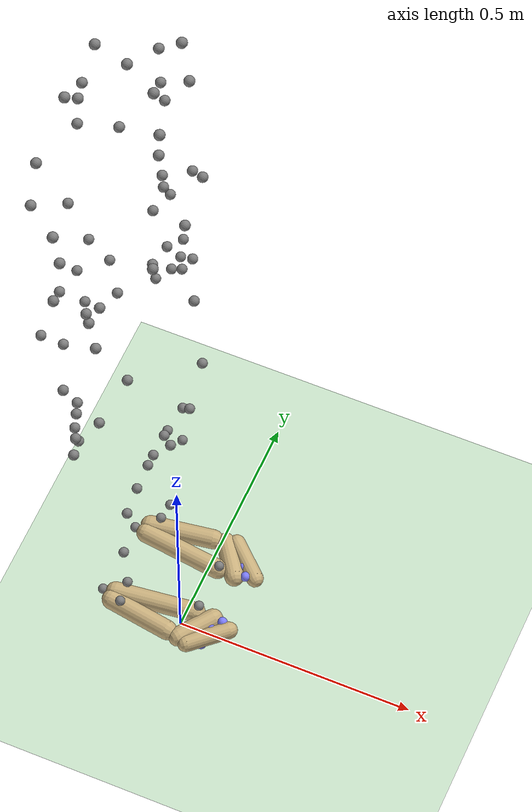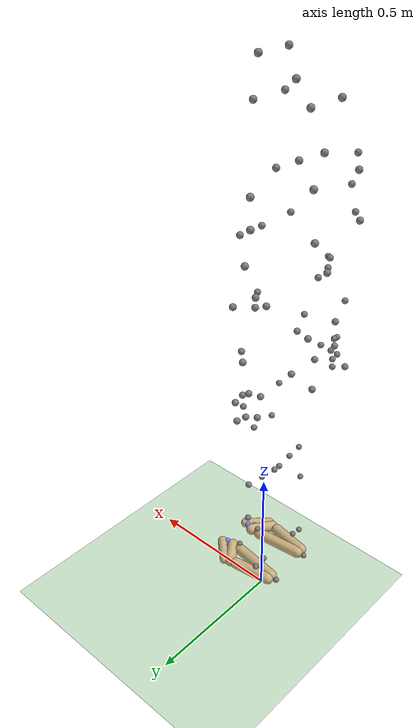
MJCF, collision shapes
<mujoco model="FullBodyModel_MuscleActuatedLowerLimb_TorqueActuatedUpperBody">
  <compiler angle="radian" boundmass="0.001" boundinertia="0.001"/>
  <option timestep="0.00416667" iterations="1" ls_iterations="4">
    <flag eulerdamp="disable" warmstart="disable"/>
  </option>
  <visual>
    <global offwidth="800"/>
  </visual>
  <visual>
    <global offheight="800"/>
  </visual>
  <size njmax="1000" nconmax="400" nuser_jnt="1"/>
  <default class="main">
    <joint stiffness="1" limited="true" armature="0.01" damping="1"/>
    <geom contype="0" conaffinity="0" margin="0.001" rgba="0.8 0.6 0.4 1"/>
    <site size="0.001 0.005 0.005"/>
    <tendon limited="false" width="0.001" rgba="0.95 0.3 0.3 1"/>
	<general ctrllimited="true" ctrlrange="-1 1"/>
	<default class="coll">
      <geom type="capsule" contype="1" group="1" rgba="0.8 0.7 0.5 1" margin="0.001"/>
    </default>
  </default>
  <worldbody>
    <geom name="floor" size="500 500 0.125" type="plane" contype="1" conaffinity="1" group="2" material="MatPlane" rgba="0.8 0.9 0.8 1"/>
	<light pos="0 0 1.3" dir="0 0 -1" directional="true" castshadow="false" cutoff="100" exponent="1" diffuse="1 1 1" specular="0.1 0.1 0.1"/>
    <body name="pelvis" pos="0 6.73556e-17 1.1" quat="0.7071067811865475 0.7071067811865475 0.0 0.0">
      <geom name="r_pelvis" type="mesh" mesh="r_pelvis"></geom>
      <geom name="l_pelvis" type="mesh" mesh="l_pelvis"></geom>
      <geom name="sacrum" type="mesh" mesh="sacrum"></geom>
      <inertial pos="-0.0707 0 0" mass="11.777" fullinertia="0.1028 0.0871 0.0579 0 0 0"></inertial>
      <joint name="pelvis_tx" type="slide" pos="0 0 0" axis="1 0 0" limited="false" range="-500 500" ref="0" armature="0" damping="0" stiffness="0"></joint>
      <joint name="pelvis_ty" type="slide" pos="0 0 0" axis="0 1 0" limited="false" range="-300 300" ref="0" armature="0" damping="0" stiffness="0"></joint>
      <joint name="pelvis_tz" type="slide" pos="0 0 0" axis="0 0 1" limited="false" range="-100 200" ref="0" armature="0" damping="0" stiffness="0"></joint>
      <joint name="pelvis_tilt" type="hinge" pos="0 0 0" axis="0 0 1" limited="true" range=" -1.5708 1.5708" ref="0" armature="0" damping="0" stiffness="0"></joint>
      <joint name="pelvis_list" type="hinge" pos="0 0 0" axis="1 0 0" limited="true" range="-1.5708 1.5708" ref="0" armature="0" damping="0" stiffness="0"></joint>
      <joint name="pelvis_rotation" type="hinge" pos="0 0 0" axis="0 1 0" limited="true" range=" -1.5708   1.5708" ref="0" armature="0" damping="0" stiffness="0"></joint>
	  <site name="rasis" pos="-0.0219389 -0.00227135 0.143841" size="0.01"/>
      <site name="lasis" pos="-0.0219389 -0.00227135 -0.143841" size="0.01"/>
      <site name="rpsis" pos="-0.190785 0.0705299 0.0625177" size="0.01"/>
      <site name="lpsis" pos="-0.190785 0.0705299 -0.0625177" size="0.01"/>
      <site name="CHip" pos="-0.105673 0.0334961 0.000910482" size="0.01"/>
      <site name="RHip" pos="-0.169805 -0.0346575 0.10081" size="0.01"/>
      <site name="LHip" pos="-0.169805 -0.0346575 -0.10081" size="0.01"/>
      <site name="mhip" pos="-0.172699 -0.0336121 0.00126933" size="0.01"/>
      <site name="rbum" pos="-0.22695 -0.0711889 0.0781376" size="0.01"/>
      <site name="lbum" pos="-0.22695 -0.0711889 -0.0781376" size="0.01"/>
	  <camera name="track" pos="0 0 4" mode="trackcom"/>
	  <light name="spotlight" pos="0 10 2" dir="0 -1 0" mode="trackcom"/>
      <body name="femur_r" pos="-0.056276 -0.07849  0.07726" quat="1.0 0.0 0.0 0.0">
        <geom name="r_femur" type="mesh" mesh="r_femur"></geom>
        <inertial pos="0 -0.17 0" mass="9.3014" fullinertia="0.1339 0.0351 0.1412 0 0 0"></inertial>
        <joint name="hip_flexion_r" type="hinge" pos="0 0 0" axis="0 0 1" limited="true" range="-0.787 2.0944" ref="0"></joint>
        <joint name="hip_adduction_r" type="hinge" pos="0 0 0" axis="1 0 0" limited="true" range="-0.524 0.524" ref="0"></joint>
        <joint name="hip_rotation_r" type="hinge" pos="0 0 0" axis="0 1 0" limited="true" range="-0.698132 0.698132" ref="0"></joint>
		<site name="rthigh" pos="-0.00674545 -0.0342306 0.106869" size="0.01"/>
        <site name="rfrontthigh" pos="0.076145 -0.166172 0.0094889" size="0.01"/>
        <site name="rfrontinnerthigh" pos="0.0678635 -0.267824 -0.0331186" size="0.01"/>
        <body name="tibia_r" pos="-4.6e-07 -0.404425 -0.00126526" quat="1.0 7.240636975890137e-18 -9.456205735995121e-17 -2.960068750797159e-20">
          <geom name="r_tibia" type="mesh" mesh="r_tibia"></geom>
          <geom name="r_fibula" type="mesh" mesh="r_fibula"></geom>
          <inertial pos="0 -0.1867 0" mass="3.7075" fullinertia="0.0504 0.0051 0.0511 0 0 0"></inertial>
          <joint name="knee_angle_r_translation2" type="slide" pos="0 0 0" axis="0.992246 0.123982 -0.00878916" limited="true" range="7.69254e-11 0.006792" ref="0"></joint>
          <joint name="knee_angle_r_translation1" type="slide" pos="0 0 0" axis="-0.124293 0.989762 -0.0701648" limited="true" range="9.53733e-08 0.00159883" ref="0"></joint>
          <joint name="knee_angle_r" type="hinge" pos="0 0 0" axis="-3.98373e-10 -0.0707131 -0.997497" limited="true" range="-0.2 2.0944" ref="0"></joint>
          <joint name="knee_angle_r_rotation2" type="hinge" pos="0 0 0" axis="0.992246 0.123982 -0.00878916" limited="true" range="-0.00167821 0.0335354" ref="0"></joint>
          <joint name="knee_angle_r_rotation3" type="hinge" pos="0 0 0" axis="-0.124293 0.989762 -0.0701648" limited="true" range="1.08939e-08 0.262788" ref="0"></joint>
          <site name="RKnee" pos="0.00728611 -0.0175738 -0.00496484" size="0.01"/>
          <site name="rknem" pos="0.013188 -0.0170056 0.0531986" size="0.01"/>
          <site name="rinnerknee" pos="0.00344908 -0.0227503 -0.0633382" size="0.01"/>
          <site name="rshin" pos="0.00642417 -0.151537 0.062612" size="0.01"/>
		  <body name="talus_r" pos="-0.01 -0.4 0" quat="1.0 -6.036754011562992e-18 1.5193252867388614e-18 -2.498419531737724e-19">
            <geom name="r_talus" type="mesh" mesh="r_talus"></geom>
            <inertial pos="0 0 0" mass="0.1" fullinertia="0.001 0.001 0.001 0 0 0"></inertial>
            <joint name="ankle_angle_r" type="hinge" pos="0 0 0" axis="-0.105014 -0.174022 0.979126" limited="true" range="-0.698132 0.523599" ref="0"></joint>
			<site name="rankm" pos="-0.00609146 0.0174918 0.0446369" size="0.01"/>
            <site name="RAnkle" pos="-0.00819541 0.0267856 0.00464904" size="0.01"/>
            <body name="calcn_r" pos="-0.04877 -0.04195  0.00792" quat="1.0 -5.320429553087796e-19 1.609289071159989e-17 -2.1848634538867752e-17">
              <geom name="r_foot" type="mesh" mesh="r_foot"></geom>
			  <geom name="r_foot_col1" class="coll" size="0.02 0.0831039" pos="0.0925 0 -0.02" quat="0.6632 0 0.748442 0"/>
              <geom name="r_foot_col3" class="coll" size="0.02 0.0657647" pos="0.075 0 0.02" quat="0.758965 0 0.651131 0"/>
              <inertial pos="0.1 0.03 0" mass="1.25" fullinertia="0.0014 0.0039 0.0041 0 0 0"></inertial>
              <joint name="subtalar_angle_r" type="hinge" pos="0 0 0" axis="0.78718 0.604747 -0.120949" limited="true" range="-0.349066 0.349066" ref="0"></joint>
			  <site name="RHeel" pos="-0.0161672 -0.00123484 -0.00612689" size="0.01"/>
              <site name="rfifthmetatarsal" pos="0.163141 -0.00757232 0.034868" size="0.01"/>
              <site name="rfirstmetatarsal" pos="0.180635 0.0222052 -0.0342573" size="0.01"/>
              <site name="RFoot" pos="0.220955 0.00145429 -0.00538186" size="0.01" rgba="0.5 0.5 1 1"/>
              <body name="toes_r" pos="0.1788 -0.002 0.00108" quat="1.0 1.314867274624753e-31 -2.6810890689525335e-17 -3.939849802505862e-32">
                <geom name="r_bofoot" type="mesh" mesh="r_bofoot"></geom>
				<geom name="r_bofoot_col1" class="coll" size="0.0175 0.045" pos="0.04 0 0.01" quat="0.400864 0 0.916138 0"/>
                <geom name="r_bofoot_col2" class="coll" size="0.02 0.04" pos="0.01 0 0" quat="0.305011 0 0.952349 0"/>
                <inertial pos="0.0346 0.006 -0.0175" mass="0.2166" fullinertia="0.0001 0.0002 0.001 0 0 0"></inertial>
                <joint name="mtp_angle_r" type="hinge" pos="0 0 0" axis="0.580954 2.6299e-15 -0.813936" limited="true" range="-0.523599 0.523599" ref="0"></joint>
				<site name="RBigToe" pos="0.0557709 0.00815447 -0.0283971" size="0.01" rgba="0.5 0.5 1 1"/>
                <site name="rfourthtoe" pos="0.0334301 -0.00868028 0.0257094" size="0.01" rgba="0.5 0.5 1 1"/>
              </body>
            </body>
          </body>
        </body>
        <body name="patella_r" pos="-0.00809 -0.40796 0" quat="1.0 0.0 0.0 0.0">
          <geom name="r_patella" type="mesh" mesh="r_patella"></geom>
          <inertial pos="0.0018 0.0264 0" mass="0.0862" fullinertia="2.87e-06 1.311e-05 1.311e-05 0 0 0"></inertial>
          <joint name="knee_angle_r_beta_translation2" type="slide" pos="0 0 0" axis="0 1 0" limited="true" range="-0.0408267 -0.0108281" ref="0"></joint>
          <joint name="knee_angle_r_beta_translation1" type="slide" pos="0 0 0" axis="1 0 0" limited="true" range="-0.0227731 0.0524192" ref="0"></joint>
          <joint name="knee_angle_r_beta_rotation1" type="hinge" pos="0 0 0" axis="0 0 1" limited="true" range="-1.79241 0.010506" ref="0"></joint>
        </body>
      </body>
      <body name="femur_l" pos="-0.056276 -0.07849 -0.07726" quat="1.0 0.0 0.0 0.0">
        <geom name="l_femur" type="mesh" mesh="l_femur"></geom>
        <inertial pos="0 -0.17 0" mass="9.3014" fullinertia="0.1339 0.0351 0.1412 0 0 0"></inertial>
        <joint name="hip_flexion_l" type="hinge" pos="0 0 0" axis="0 0 1" limited="true" range="-0.787 2.0944" ref="0"></joint>
        <joint name="hip_adduction_l" type="hinge" pos="0 0 0" axis="-1 -0 -0" limited="true" range="-0.524 0.524" ref="0"></joint>
        <joint name="hip_rotation_l" type="hinge" pos="0 0 0" axis="-0 -1 -0" limited="true" range="-0.698132 0.698132" ref="0"></joint>
		<site name="lthigh" pos="-0.00674545 -0.0342306 -0.106869" size="0.01"/>
        <site name="lfrontthigh" pos="0.076145 -0.166172 -0.0094889" size="0.01"/>
        <site name="lfrontinnerthigh" pos="0.0678635 -0.267824 0.0331186" size="0.01"/>
        <body name="tibia_l" pos="-4.6e-07 -0.404425 0.00126526" quat="1.0 -7.240636975890137e-18 9.456205735995121e-17 -2.960068750797159e-20">
          <geom name="l_tibia" type="mesh" mesh="l_tibia"></geom>
          <geom name="l_fibula" type="mesh" mesh="l_fibula"></geom>
          <inertial pos="0 -0.1867 0" mass="3.7075" fullinertia="0.0504 0.0051 0.0511 0 0 0"></inertial>
          <joint name="knee_angle_l_translation2" type="slide" pos="0 0 0" axis="-0.992246 -0.123982 -0.00878916" limited="true" range="-0.006792 -7.69254e-11" ref="0"></joint>
          <joint name="knee_angle_l_translation1" type="slide" pos="0 0 0" axis="-0.124293 0.989762 0.0701648" limited="true" range="9.53733e-08 0.00159883" ref="0"></joint>
          <joint name="knee_angle_l" type="hinge" pos="0 0 0" axis="3.98373e-10 0.0707131 -0.997497" limited="true" range="-0.2 2.0944" ref="0"></joint>
          <joint name="knee_angle_l_rotation2" type="hinge" pos="0 0 0" axis="-0.992246 -0.123982 -0.00878916" limited="true" range="-0.00167821 0.0335354" ref="0"></joint>
          <joint name="knee_angle_l_rotation3" type="hinge" pos="0 0 0" axis="-0.124293 0.989762 0.0701648" limited="true" range="-0.262788 -1.08939e-08" ref="0"></joint>
		  <site name="LKnee" pos="0.00728611 -0.0175738 0.00496484" size="0.01"/>
          <site name="lknem" pos="0.013188 -0.0170056 -0.0531986" size="0.01"/>
          <site name="linnerknee" pos="0.00344908 -0.0227503 0.0633382" size="0.01"/>
          <site name="lshin" pos="0.00642417 -0.151537 -0.062612" size="0.01"/>
          <body name="talus_l" pos="-0.01 -0.4 0" quat="1.0 6.036754011562992e-18 -1.5193252867388614e-18 -2.498419531737724e-19">
            <geom name="l_talus" type="mesh" mesh="l_talus"></geom>
            <inertial pos="0 0 0" mass="0.1" fullinertia="0.001 0.001 0.001 0 0 0"></inertial>
            <joint name="ankle_angle_l" type="hinge" pos="0 0 0" axis="0.105014 0.174022 0.979126" limited="true" range="-0.698132 0.523599" ref="0"></joint>
			<site name="lankm" pos="-0.00609146 0.0174918 -0.0446369" size="0.01"/>
            <site name="LAnkle" pos="-0.00819541 0.0267856 -0.00464904" size="0.01"/>
            <body name="calcn_l" pos="-0.04877 -0.04195 -0.00792" quat="1.0 5.320429553087796e-19 -1.609289071159989e-17 -2.1848634538867752e-17">
              <geom name="l_foot" type="mesh" mesh="l_foot"></geom>
			  <geom name="l_foot_col1" class="coll" size="0.02 0.0831039" pos="0.0925 0 0.02" quat="0.748442 0 0.6632 0"/>
              <geom name="l_foot_col3" class="coll" size="0.02 0.0657647" pos="0.075 0 -0.02" quat="0.651131 0 0.758965 0"/>
              <inertial pos="0.1 0.03 0" mass="1.25" fullinertia="0.0014 0.0039 0.0041 0 0 0"></inertial>
              <joint name="subtalar_angle_l" type="hinge" pos="0 0 0" axis="-0.78718 -0.604747 -0.120949" limited="true" range="-0.349066 0.349066" ref="0"></joint>
			  <site name="LHeel" pos="-0.0161672 -0.00123484 0.00612689" size="0.01"/>
              <site name="lfifthmetatarsal" pos="0.163141 -0.00757232 -0.034868" size="0.01"/>
              <site name="lfirstmetatarsal" pos="0.180635 0.0222052 0.0342573" size="0.01"/>
              <site name="LFoot" pos="0.220955 0.00145429 0.00538186" size="0.01" rgba="0.5 0.5 1 1"/>
              <body name="toes_l" pos="  0.1788   -0.002 -0.00108" quat="1.0 1.314867274624753e-31 2.6810890689525335e-17 3.939849802505862e-32">
                <geom name="l_bofoot" type="mesh" mesh="l_bofoot"></geom>
				<geom name="l_bofoot_col1" class="coll" size="0.0175 0.045" pos="0.04 0 -0.01" quat="0.400864 0 -0.916138 0"/>
                <geom name="l_bofoot_col2" class="coll" size="0.02 0.04" pos="0.01 0 0" quat="0.305011 0 -0.952349 0"/>
                <inertial pos="  0.0346    0.006   0.0175" mass="0.2166" fullinertia="0.0001 0.0002 0.001 0 0 0"></inertial>
                <joint name="mtp_angle_l" type="hinge" pos="0 0 0" axis="-0.580954 2.6299e-15 -0.813936" limited="true" range="-0.523599 0.523599" ref="0"></joint>
				<site name="LBigToe" pos="0.0557709 0.00815447 0.0283971" size="0.01" rgba="0.5 0.5 1 1"/>
                <site name="lfourthtoe" pos="0.0334301 -0.00868028 -0.0257094" size="0.01" rgba="0.5 0.5 1 1"/>
              </body>
            </body>
          </body>
        </body>
        <body name="patella_l" pos="-0.00809 -0.40796        0" quat="1.0 0.0 0.0 0.0">
          <geom name="l_patella" type="mesh" mesh="l_patella"></geom>
          <inertial pos="0.0018 0.0264 0" mass="0.0862" fullinertia="2.87e-06 1.311e-05 1.311e-05 0 0 0"></inertial>
          <joint name="knee_angle_l_beta_translation2" type="slide" pos="0 0 0" axis="0 1 0" limited="true" range="-0.0408267 -0.0108281" ref="0"></joint>
          <joint name="knee_angle_l_beta_translation1" type="slide" pos="0 0 0" axis="1 0 0" limited="true" range="-0.0227731 0.0524192" ref="0"></joint>
          <joint name="knee_angle_l_beta_rotation1" type="hinge" pos="0 0 0" axis="0 0 1" limited="true" range="-1.79241 0.010506" ref="0"></joint>
        </body>
      </body>
      <body name="torso" pos="-0.1007 0.0815 0" quat="1.0 0.0 0.0 0.0">
        <geom name="hat_spine" type="mesh" mesh="hat_spine"></geom>
        <geom name="hat_ribs_scap" type="mesh" mesh="hat_ribs_scap"></geom>
        <inertial pos="-0.03 0.32 0" mass="26.8266" fullinertia="1.4745 0.7555 1.4314 0 0 0"></inertial>
        <joint name="lumbar_extension" type="hinge" pos="0 0 0" axis="0 0 1" limited="true" range="-1.5708 1.5708" ref="0"></joint>
        <joint name="lumbar_bending" type="hinge" pos="0 0 0" axis="1 0 0" limited="true" range="-1.5708 1.5708" ref="0"></joint>
        <joint name="lumbar_rotation" type="hinge" pos="0 0 0" axis="0 1 0" limited="true" range="-1.5708 1.5708" ref="0"></joint>
		<site name="sternum" pos="0.129954 0.23292 -0.00500331" size="0.01"/>
        <site name="umbilicus" pos="0.148857 0.0212547 0.00415021" size="0.01"/>
        <site name="upperback" pos="-0.0985789 0.167578 -0.00757428" size="0.01"/>
        <site name="rback" pos="-0.101555 0.414713 0.0933494" size="0.01"/>
        <site name="lback" pos="-0.101555 0.414713 -0.0933494" size="0.01"/>
        <site name="lscapula" pos="-0.116794 0.284777 -0.0958928" size="0.01"/>
        <site name="rscapula" pos="-0.116794 0.284777 0.0958928" size="0.01"/>
        <site name="rwaist" pos="0.0134005 0.11646 0.16282" size="0.01"/>
        <site name="lwaist" pos="0.0134005 0.11646 -0.16282" size="0.01"/>
        <site name="rbreast" pos="0.119027 0.241351 0.106505" size="0.01"/>
        <site name="lbreast" pos="0.119027 0.241351 -0.106505" size="0.01"/>
        <site name="rshom" pos="-0.0121523 0.408883 0.218321" size="0.01"/>
        <site name="lshom" pos="-0.0121523 0.408883 -0.218321" size="0.01"/>
        <site name="backneck" pos="-0.0722377 0.47708 -0.0185174" size="0.01"/>
        <site name="Neck" pos="0.00544366 0.44067 -0.0154065" size="0.01"/>
        <site name="clavicle" pos="0.0804364 0.404454 -0.0117544" size="0.01"/>
		<body name="head" pos="0 0.541458 0">
          <joint name="neck_extension" pos="0 0 0" axis="0 0 1" stiffness="10" range="-1.5708 0.377" damping="5"/>
          <joint name="neck_bending" pos="0 0 0" axis="1 0 0" stiffness="10" range="-0.754 0.754" damping="5"/>
          <joint name="neck_rotation" pos="0 0 0" axis="0 1 0" stiffness="20" range="-0.754 0.754" damping="5"/>
          <geom name="hat_jaw" pos="0 -0.541458 0" type="mesh" mesh="hat_jaw"/>
          <geom name="hat_skull" pos="0 -0.541458 0" type="mesh" mesh="hat_skull"/>
          <site name="Head" pos="0.025319 0.0865568 -0.0153891" size="0.01"/>
          <site name="rfronthead" pos="0.108104 0.13837 0.0568891" size="0.01"/>
          <site name="lfronthead" pos="0.108104 0.13837 -0.0568891" size="0.01"/>
          <site name="rbackhead" pos="-0.0560765 0.0443392 0.0608796" size="0.01"/>
          <site name="lbackhead" pos="-0.0560765 0.0443392 -0.0608796" size="0.01"/>
          <site name="rcheek" pos="0.118333 0.0332712 0.0611876" size="0.01"/>
          <site name="lcheek" pos="0.118333 0.0332712 -0.0611876" size="0.01"/>
        </body>
        <body name="humerus_r" pos="0.003155 0.3715 0.17" quat="1.0 0.0 0.0 0.0">
          <geom name="humerus_rv" type="mesh" mesh="humerus_rv"></geom>
          <inertial pos="0 -0.164502 0" mass="2.0325" fullinertia="0.011946 0.004121 0.013409 0 0 0"></inertial>
          <joint name="arm_flex_r" type="hinge" pos="0 0 0" axis="0 0 1" limited="true" range="-1.5708 1.5708" ref="0"></joint>
          <joint name="arm_add_r" type="hinge" pos="0 0 0" axis="1 0 0" limited="true" range="-2.0944 1.5708" ref="0"></joint>
          <joint name="arm_rot_r" type="hinge" pos="0 0 0" axis="0 1 0" limited="true" range="-1.5708 1.5708" ref="0"></joint>
		  <site name="RShoulder" pos="-0.00986901 -0.0475865 0.0400896" size="0.01"/>
          <site name="rupperarm" pos="-0.0143887 -0.13254 0.0641756" size="0.01"/>
          <body name="ulna_r" pos="0.013144 -0.286273 -0.009595" quat="1.0 1.6893809785063376e-18 -6.938893903907228e-18 4.155190089080778e-20">
            <geom name="ulna_rv" type="mesh" mesh="ulna_rv"></geom>
            <inertial pos="0 -0.120525 0" mass="0.6075" fullinertia="0.002962 0.000618 0.003213 0 0 0"></inertial>
            <joint name="elbow_flex_r" type="hinge" pos="0 0 0" axis="0.226047 0.022269 0.973862" limited="true" range="0 2.618" ref="0"></joint>
			<site name="relbinner" pos="-0.000399663 -0.0142889 -0.0456821" size="0.01"/>
            <site name="RElbow" pos="0 0 0" size="0.01"/>
            <site name="relbm" pos="0.0357562 0.00809211 0.0482203" size="0.01"/>
            <body name="radius_r" pos="-0.006727 -0.013007 0.026083" quat="1.0 2.301201592641875e-21 -6.933378131686372e-19 1.7489241099837954e-19">
              <geom name="radius_rv" type="mesh" mesh="radius_rv"></geom>
              <inertial pos="0 -0.120525 0" mass="0.6075" fullinertia="0.002962 0.000618 0.003213 0 0 0"></inertial>
              <joint name="pro_sup_r" type="hinge" pos="0 0 0" axis="0.056398 0.998406 0.001952" limited="true" range="0 1.5708" ref="0"></joint>
			  <site name="rforearm" pos="-0.0145268 -0.114758 0.0463392" size="0.01"/>
              <body name="hand_r" pos="-0.008797 -0.235841  0.01361" quat="1.0 0.0 8.407790785948892e-45 0.0">
                <geom name="pisiform_rvs" type="mesh" mesh="pisiform_rvs"></geom>
                <geom name="lunate_rvs" type="mesh" mesh="lunate_rvs"></geom>
                <geom name="scaphoid_rvs" type="mesh" mesh="scaphoid_rvs"></geom>
                <geom name="triquetrum_rvs" type="mesh" mesh="triquetrum_rvs"></geom>
                <geom name="hamate_rvs" type="mesh" mesh="hamate_rvs"></geom>
                <geom name="capitate_rvs" type="mesh" mesh="capitate_rvs"></geom>
                <geom name="trapezoid_rvs" type="mesh" mesh="trapezoid_rvs"></geom>
                <geom name="trapezium_rvs" type="mesh" mesh="trapezium_rvs"></geom>
                <geom name="metacarpal2_rvs" type="mesh" mesh="metacarpal2_rvs"></geom>
                <geom name="index_proximal_rvs" type="mesh" mesh="index_proximal_rvs"></geom>
                <geom name="index_medial_rvs" type="mesh" mesh="index_medial_rvs"></geom>
                <geom name="index_distal_rvs" type="mesh" mesh="index_distal_rvs"></geom>
                <geom name="metacarpal3_rvs" type="mesh" mesh="metacarpal3_rvs"></geom>
                <geom name="middle_proximal_rvs" type="mesh" mesh="middle_proximal_rvs"></geom>
                <geom name="middle_medial_rvs" type="mesh" mesh="middle_medial_rvs"></geom>
                <geom name="middle_distal_rvs" type="mesh" mesh="middle_distal_rvs"></geom>
                <geom name="metacarpal4_rvs" type="mesh" mesh="metacarpal4_rvs"></geom>
                <geom name="ring_proximal_rvs" type="mesh" mesh="ring_proximal_rvs"></geom>
                <geom name="ring_medial_rvs" type="mesh" mesh="ring_medial_rvs"></geom>
                <geom name="ring_distal_rvs" type="mesh" mesh="ring_distal_rvs"></geom>
                <geom name="metacarpal5_rvs" type="mesh" mesh="metacarpal5_rvs"></geom>
                <geom name="little_proximal_rvs" type="mesh" mesh="little_proximal_rvs"></geom>
                <geom name="little_medial_rvs" type="mesh" mesh="little_medial_rvs"></geom>
                <geom name="little_distal_rvs" type="mesh" mesh="little_distal_rvs"></geom>
                <geom name="metacarpal1_rvs" type="mesh" mesh="metacarpal1_rvs"></geom>
                <geom name="thumb_proximal_rvs" type="mesh" mesh="thumb_proximal_rvs"></geom>
                <geom name="thumb_distal_rvs" type="mesh" mesh="thumb_distal_rvs"></geom>
                <inertial pos="0 -0.068095 0" mass="0.4575" fullinertia="0.000892 0.000547 0.00134 0 0 0"></inertial>
                <joint name="wrist_flex_r" type="hinge" pos="0 0 0" axis="-3.55271e-15 3.55271e-15 1" limited="true" range="-1.22173  1.22173" ref="0"></joint>
                <joint name="wrist_dev_r" type="hinge" pos="0 0 0" axis="1 0 3.55271e-15" limited="true" range="-0.436332 0.610865" ref="0"></joint>
				<site name="rwrithumbside" pos="0.0155423 -0.0179106 0.03832" size="0.01"/>
                <site name="rwripinkieside" pos="-0.0147409 -0.0208474 -0.0339345" size="0.01"/>
                <site name="RWrist" pos="0 0 0" size="0.01"/>
                <site name="RHand" pos="0.0044447 -0.0795391 0.00687257" size="0.01"/>
                <site name="rfin" pos="-0.0157425 -0.0865746 -0.0202781" size="0.01"/>
                <site name="rthumb" pos="0.00937293 -0.0784729 0.038221" size="0.01"/>
              </body>
            </body>
          </body>
        </body>
        <body name="humerus_l" pos="0.003155 0.3715 -0.17" quat="1.0 0.0 0.0 0.0">
          <geom name="humerus_lv" type="mesh" mesh="humerus_lv"></geom>
          <inertial pos="0 -0.164502 0" mass="2.0325" fullinertia="0.011946 0.004121 0.013409 0 0 0"></inertial>
          <joint name="arm_flex_l" type="hinge" pos="0 0 0" axis="0 0 1" limited="true" range="-1.5708 1.5708" ref="0"></joint>
          <joint name="arm_add_l" type="hinge" pos="0 0 0" axis="-1 0 0" limited="true" range="-2.0944 1.5708" ref="0"></joint>
          <joint name="arm_rot_l" type="hinge" pos="0 0 0" axis="0 -1 0" limited="true" range="-1.5708 1.5708" ref="0"></joint>
		  <site name="LShoulder" pos="-0.00986901 -0.0475865 -0.0400896" size="0.01"/>
          <site name="lupperarm" pos="-0.0143887 -0.13254 -0.0641756" size="0.01"/>
          <body name="ulna_l" pos="0.013144 -0.286273 0.009595" quat="1.0 -1.6893809785063376e-18 6.938893903907228e-18 4.155190089080778e-20">
            <geom name="ulna_lv" type="mesh" mesh="ulna_lv"></geom>
            <inertial pos="0 -0.120525 0" mass="0.6075" fullinertia="0.002962 0.000618 0.003213 0 0 0"></inertial>
            <joint name="elbow_flex_l" type="hinge" pos="0 0 0" axis="-0.226047 -0.022269 0.973862" limited="true" range="0 2.618" ref="0"></joint>
			<site name="lelbinner" pos="-0.000399663 -0.0142889 0.0456821" size="0.01"/>
            <site name="LElbow" pos="0 0 0" size="0.01"/>
            <site name="lelbm" pos="0.0357562 0.00809211 -0.0482203" size="0.01"/>
            <body name="radius_l" pos="-0.006727 -0.013007 -0.026083" quat="1.0 -2.301201592641875e-21 6.933378131686372e-19 1.7489241099837954e-19">
              <geom name="radius_lv" type="mesh" mesh="radius_lv"></geom>
              <inertial pos="0 -0.120525 0" mass="0.6075" fullinertia="0.002962 0.000618 0.003213 0 0 0"></inertial>
              <joint name="pro_sup_l" type="hinge" pos="0 0 0" axis="-0.056398 -0.998406 0.001952" limited="true" range="0 1.5708" ref="0"></joint>
			  <site name="lforearm" pos="-0.0145268 -0.114758 -0.0463392" size="0.01"/>
              <body name="hand_l" pos="-0.008797 -0.235841 -0.01361" quat="1.0 0.0 8.407790785948892e-45 0.0">
                <geom name="pisiform_lvs" type="mesh" mesh="pisiform_lvs"></geom>
                <geom name="lunate_lvs" type="mesh" mesh="lunate_lvs"></geom>
                <geom name="scaphoid_lvs" type="mesh" mesh="scaphoid_lvs"></geom>
                <geom name="triquetrum_lvs" type="mesh" mesh="triquetrum_lvs"></geom>
                <geom name="hamate_lvs" type="mesh" mesh="hamate_lvs"></geom>
                <geom name="capitate_lvs" type="mesh" mesh="capitate_lvs"></geom>
                <geom name="trapezoid_lvs" type="mesh" mesh="trapezoid_lvs"></geom>
                <geom name="trapezium_lvs" type="mesh" mesh="trapezium_lvs"></geom>
                <geom name="metacarpal2_lvs" type="mesh" mesh="metacarpal2_lvs"></geom>
                <geom name="index_proximal_lvs" type="mesh" mesh="index_proximal_lvs"></geom>
                <geom name="index_medial_lvs" type="mesh" mesh="index_medial_lvs"></geom>
                <geom name="index_distal_lvs" type="mesh" mesh="index_distal_lvs"></geom>
                <geom name="metacarpal3_lvs" type="mesh" mesh="metacarpal3_lvs"></geom>
                <geom name="middle_proximal_lvs" type="mesh" mesh="middle_proximal_lvs"></geom>
                <geom name="middle_medial_lvs" type="mesh" mesh="middle_medial_lvs"></geom>
                <geom name="middle_distal_lvs" type="mesh" mesh="middle_distal_lvs"></geom>
                <geom name="metacarpal4_lvs" type="mesh" mesh="metacarpal4_lvs"></geom>
                <geom name="ring_proximal_lvs" type="mesh" mesh="ring_proximal_lvs"></geom>
                <geom name="ring_medial_lvs" type="mesh" mesh="ring_medial_lvs"></geom>
                <geom name="ring_distal_lvs" type="mesh" mesh="ring_distal_lvs"></geom>
                <geom name="metacarpal5_lvs" type="mesh" mesh="metacarpal5_lvs"></geom>
                <geom name="little_proximal_lvs" type="mesh" mesh="little_proximal_lvs"></geom>
                <geom name="little_medial_lvs" type="mesh" mesh="little_medial_lvs"></geom>
                <geom name="little_distal_lvs" type="mesh" mesh="little_distal_lvs"></geom>
                <geom name="metacarpal1_lvs" type="mesh" mesh="metacarpal1_lvs"></geom>
                <geom name="thumb_proximal_lvs" type="mesh" mesh="thumb_proximal_lvs"></geom>
                <geom name="thumb_distal_lvs" type="mesh" mesh="thumb_distal_lvs"></geom>
                <inertial pos="0 -0.068095 0" mass="0.4575" fullinertia="0.000892 0.000547  0.00134 0 0 0"></inertial>
                <joint name="wrist_flex_l" type="hinge" pos="0 0 0" axis="-3.55271e-15 -3.55271e-15 1" limited="true" range="-1.22173 1.22173" ref="0"></joint>
                <joint name="wrist_dev_l" type="hinge" pos="0 0 0" axis="-1 0 -3.55271e-15" limited="true" range="-0.436332 0.610865" ref="0"></joint>
				<site name="lwrithumbside" pos="0.0155423 -0.0179106 -0.03832" size="0.01"/>
                <site name="lwripinkieside" pos="-0.0147409 -0.0208474 0.0339345" size="0.01"/>
                <site name="LWrist" pos="0 0 0" size="0.01"/>
                <site name="LHand" pos="0.0044447 -0.0795391 -0.00687257" size="0.01"/>
                <site name="lfin" pos="-0.0157425 -0.0865746 0.0202781" size="0.01"/>
                <site name="lthumb" pos="0.00937293 -0.0784729 -0.038221" size="0.01"/>
              </body>
            </body>
          </body>
        </body>
      </body>
    </body>
  </worldbody>
  <asset>
    <mesh name="r_pelvis" file="Geometry/r_pelvis.stl" scale="1 1 1"></mesh>
    <mesh name="l_pelvis" file="Geometry/l_pelvis.stl" scale="1 1 1"></mesh>
    <mesh name="sacrum" file="Geometry/sacrum.stl" scale="1 1 1"></mesh>
    <mesh name="r_femur" file="Geometry/r_femur.stl" scale="1 1 1"></mesh>
    <mesh name="r_tibia" file="Geometry/r_tibia.stl" scale="1 1 1"></mesh>
    <mesh name="r_fibula" file="Geometry/r_fibula.stl" scale="1 1 1"></mesh>
    <mesh name="r_talus" file="Geometry/r_talus.stl" scale="1 1 1"></mesh>
    <mesh name="r_foot" file="Geometry/r_foot.stl" scale="1 1 1"></mesh>
    <mesh name="r_bofoot" file="Geometry/r_bofoot.stl" scale="1 1 1"></mesh>
    <mesh name="r_patella" file="Geometry/r_patella.stl" scale="1 1 1"></mesh>
    <mesh name="l_femur" file="Geometry/l_femur.stl" scale="1 1 1"></mesh>
    <mesh name="l_tibia" file="Geometry/l_tibia.stl" scale="1 1 1"></mesh>
    <mesh name="l_fibula" file="Geometry/l_fibula.stl" scale="1 1 1"></mesh>
    <mesh name="l_talus" file="Geometry/l_talus.stl" scale="1 1 1"></mesh>
    <mesh name="l_foot" file="Geometry/l_foot.stl" scale="1 1 1"></mesh>
    <mesh name="l_bofoot" file="Geometry/l_bofoot.stl" scale="1 1 1"></mesh>
    <mesh name="l_patella" file="Geometry/l_patella.stl" scale="1 1 1"></mesh>
    <mesh name="hat_spine" file="Geometry/hat_spine.stl" scale="1 1 1"></mesh>
    <mesh name="hat_jaw" file="Geometry/hat_jaw.stl" scale="1 1 1"></mesh>
    <mesh name="hat_skull" file="Geometry/hat_skull.stl" scale="1 1 1"></mesh>
    <mesh name="hat_ribs_scap" file="Geometry/hat_ribs_scap.stl" scale="1 1 1"></mesh>
    <mesh name="humerus_rv" file="Geometry/humerus_rv.stl" scale="1 1 1"></mesh>
    <mesh name="ulna_rv" file="Geometry/ulna_rv.stl" scale="1 1 1"></mesh>
    <mesh name="radius_rv" file="Geometry/radius_rv.stl" scale="1 1 1"></mesh>
    <mesh name="pisiform_rvs" file="Geometry/pisiform_rvs.stl" scale="0.85 0.85 0.85"></mesh>
    <mesh name="lunate_rvs" file="Geometry/lunate_rvs.stl" scale="0.85 0.85 0.85"></mesh>
    <mesh name="scaphoid_rvs" file="Geometry/scaphoid_rvs.stl" scale="0.85 0.85 0.85"></mesh>
    <mesh name="triquetrum_rvs" file="Geometry/triquetrum_rvs.stl" scale="0.85 0.85 0.85"></mesh>
    <mesh name="hamate_rvs" file="Geometry/hamate_rvs.stl" scale="0.85 0.85 0.85"></mesh>
    <mesh name="capitate_rvs" file="Geometry/capitate_rvs.stl" scale="0.85 0.85 0.85"></mesh>
    <mesh name="trapezoid_rvs" file="Geometry/trapezoid_rvs.stl" scale="0.85 0.85 0.85"></mesh>
    <mesh name="trapezium_rvs" file="Geometry/trapezium_rvs.stl" scale="0.85 0.85 0.85"></mesh>
    <mesh name="metacarpal2_rvs" file="Geometry/metacarpal2_rvs.stl" scale="0.85 0.85 0.85"></mesh>
    <mesh name="index_proximal_rvs" file="Geometry/index_proximal_rvs.stl" scale="0.85 0.85 0.85"></mesh>
    <mesh name="index_medial_rvs" file="Geometry/index_medial_rvs.stl" scale="0.85 0.85 0.85"></mesh>
    <mesh name="index_distal_rvs" file="Geometry/index_distal_rvs.stl" scale="0.85 0.85 0.85"></mesh>
    <mesh name="metacarpal3_rvs" file="Geometry/metacarpal3_rvs.stl" scale="0.85 0.85 0.85"></mesh>
    <mesh name="middle_proximal_rvs" file="Geometry/middle_proximal_rvs.stl" scale="0.85 0.85 0.85"></mesh>
    <mesh name="middle_medial_rvs" file="Geometry/middle_medial_rvs.stl" scale="0.85 0.85 0.85"></mesh>
    <mesh name="middle_distal_rvs" file="Geometry/middle_distal_rvs.stl" scale="0.85 0.85 0.85"></mesh>
    <mesh name="metacarpal4_rvs" file="Geometry/metacarpal4_rvs.stl" scale="0.85 0.85 0.85"></mesh>
    <mesh name="ring_proximal_rvs" file="Geometry/ring_proximal_rvs.stl" scale="0.85 0.85 0.85"></mesh>
    <mesh name="ring_medial_rvs" file="Geometry/ring_medial_rvs.stl" scale="0.85 0.85 0.85"></mesh>
    <mesh name="ring_distal_rvs" file="Geometry/ring_distal_rvs.stl" scale="0.85 0.85 0.85"></mesh>
    <mesh name="metacarpal5_rvs" file="Geometry/metacarpal5_rvs.stl" scale="0.85 0.85 0.85"></mesh>
    <mesh name="little_proximal_rvs" file="Geometry/little_proximal_rvs.stl" scale="0.85 0.85 0.85"></mesh>
    <mesh name="little_medial_rvs" file="Geometry/little_medial_rvs.stl" scale="0.85 0.85 0.85"></mesh>
    <mesh name="little_distal_rvs" file="Geometry/little_distal_rvs.stl" scale="0.85 0.85 0.85"></mesh>
    <mesh name="metacarpal1_rvs" file="Geometry/metacarpal1_rvs.stl" scale="0.85 0.85 0.85"></mesh>
    <mesh name="thumb_proximal_rvs" file="Geometry/thumb_proximal_rvs.stl" scale="0.85 0.85 0.85"></mesh>
    <mesh name="thumb_distal_rvs" file="Geometry/thumb_distal_rvs.stl" scale="0.85 0.85 0.85"></mesh>
    <mesh name="humerus_lv" file="Geometry/humerus_lv.stl" scale="1 1 1"></mesh>
    <mesh name="ulna_lv" file="Geometry/ulna_lv.stl" scale="1 1 1"></mesh>
    <mesh name="radius_lv" file="Geometry/radius_lv.stl" scale="1 1 1"></mesh>
    <mesh name="pisiform_lvs" file="Geometry/pisiform_lvs.stl" scale="0.85 0.85 0.85"></mesh>
    <mesh name="lunate_lvs" file="Geometry/lunate_lvs.stl" scale="0.85 0.85 0.85"></mesh>
    <mesh name="scaphoid_lvs" file="Geometry/scaphoid_lvs.stl" scale="0.85 0.85 0.85"></mesh>
    <mesh name="triquetrum_lvs" file="Geometry/triquetrum_lvs.stl" scale="0.85 0.85 0.85"></mesh>
    <mesh name="hamate_lvs" file="Geometry/hamate_lvs.stl" scale="0.85 0.85 0.85"></mesh>
    <mesh name="capitate_lvs" file="Geometry/capitate_lvs.stl" scale="0.85 0.85 0.85"></mesh>
    <mesh name="trapezoid_lvs" file="Geometry/trapezoid_lvs.stl" scale="0.85 0.85 0.85"></mesh>
    <mesh name="trapezium_lvs" file="Geometry/trapezium_lvs.stl" scale="0.85 0.85 0.85"></mesh>
    <mesh name="metacarpal2_lvs" file="Geometry/metacarpal2_lvs.stl" scale="0.85 0.85 0.85"></mesh>
    <mesh name="index_proximal_lvs" file="Geometry/index_proximal_lvs.stl" scale="0.85 0.85 0.85"></mesh>
    <mesh name="index_medial_lvs" file="Geometry/index_medial_lvs.stl" scale="0.85 0.85 0.85"></mesh>
    <mesh name="index_distal_lvs" file="Geometry/index_distal_lvs.stl" scale="0.85 0.85 0.85"></mesh>
    <mesh name="metacarpal3_lvs" file="Geometry/metacarpal3_lvs.stl" scale="0.85 0.85 0.85"></mesh>
    <mesh name="middle_proximal_lvs" file="Geometry/middle_proximal_lvs.stl" scale="0.85 0.85 0.85"></mesh>
    <mesh name="middle_medial_lvs" file="Geometry/middle_medial_lvs.stl" scale="0.85 0.85 0.85"></mesh>
    <mesh name="middle_distal_lvs" file="Geometry/middle_distal_lvs.stl" scale="0.85 0.85 0.85"></mesh>
    <mesh name="metacarpal4_lvs" file="Geometry/metacarpal4_lvs.stl" scale="0.85 0.85 0.85"></mesh>
    <mesh name="ring_proximal_lvs" file="Geometry/ring_proximal_lvs.stl" scale="0.85 0.85 0.85"></mesh>
    <mesh name="ring_medial_lvs" file="Geometry/ring_medial_lvs.stl" scale="0.85 0.85 0.85"></mesh>
    <mesh name="ring_distal_lvs" file="Geometry/ring_distal_lvs.stl" scale="0.85 0.85 0.85"></mesh>
    <mesh name="metacarpal5_lvs" file="Geometry/metacarpal5_lvs.stl" scale="0.85 0.85 0.85"></mesh>
    <mesh name="little_proximal_lvs" file="Geometry/little_proximal_lvs.stl" scale="0.85 0.85 0.85"></mesh>
    <mesh name="little_medial_lvs" file="Geometry/little_medial_lvs.stl" scale="0.85 0.85 0.85"></mesh>
    <mesh name="little_distal_lvs" file="Geometry/little_distal_lvs.stl" scale="0.85 0.85 0.85"></mesh>
    <mesh name="metacarpal1_lvs" file="Geometry/metacarpal1_lvs.stl" scale="0.85 0.85 0.85"></mesh>
    <mesh name="thumb_proximal_lvs" file="Geometry/thumb_proximal_lvs.stl" scale="0.85 0.85 0.85"></mesh>
    <mesh name="thumb_distal_lvs" file="Geometry/thumb_distal_lvs.stl" scale="0.85 0.85 0.85"></mesh>
    <texture name="texplane" type="2d" builtin="checker" rgb1=".2 .3 .4" rgb2=".1 0.15 0.2" width="100" height="100"></texture>
    <material name="MatPlane" reflectance="0.0" texture="texplane" texrepeat="1 1" texuniform="true"></material>
  </asset>
  <equality>
    <joint name="knee_angle_r_translation2_constraint" active="true" joint1="knee_angle_r_translation2" joint2="knee_angle_r" polycoef="7.69254e-11 0.00587971 -0.00125622 -2.61846e-06 6.24355e-07" solimp="0.9999 0.9999 0.001 0.5 2"></joint>
    <joint name="knee_angle_r_translation1_constraint" active="true" joint1="knee_angle_r_translation1" joint2="knee_angle_r" polycoef="9.53733e-08 0.00312879 -0.00230804 0.000561561 5.68366e-07" solimp="0.9999 0.9999 0.001 0.5 2"></joint>
    <joint name="knee_angle_r_rotation2_constraint" active="true" joint1="knee_angle_r_rotation2" joint2="knee_angle_r" polycoef="-1.47325e-08   0.0791 -0.0328478 -0.0252183 0.0108321" solimp="0.9999 0.9999 0.001 0.5 2"></joint>
    <joint name="knee_angle_r_rotation3_constraint" active="true" joint1="knee_angle_r_rotation3" joint2="knee_angle_r" polycoef="1.08939e-08 0.369499 -0.169478 0.0251643 3.50498e-07" solimp="0.9999 0.9999 0.001 0.5 2"></joint>
    <joint name="knee_angle_r_beta_translation2_constraint" active="true" joint1="knee_angle_r_beta_translation2" joint2="knee_angle_r" polycoef="-0.0108281 -0.0487847 0.00927644 0.0131673 -0.00349673" solimp="0.9999 0.9999 0.001 0.5 2"></joint>
    <joint name="knee_angle_r_beta_translation1_constraint" active="true" joint1="knee_angle_r_beta_translation1" joint2="knee_angle_r" polycoef="0.0524192 -0.0150188 -0.0340522 0.0133393 -0.000879151" solimp="0.9999 0.9999 0.001 0.5 2"></joint>
    <joint name="knee_angle_r_beta_rotation1_constraint" active="true" joint1="knee_angle_r_beta_rotation1" joint2="knee_angle_r" polycoef="0.010506 0.0247615 -1.31647 0.716337 -0.138302" solimp="0.9999 0.9999 0.001 0.5 2"></joint>
    <joint name="knee_angle_l_translation2_constraint" active="true" joint1="knee_angle_l_translation2" joint2="knee_angle_l" polycoef="-7.69254e-11 -0.00587971 0.00125622 2.61846e-06 -6.24355e-07" solimp="0.9999 0.9999 0.001 0.5 2"></joint>
    <joint name="knee_angle_l_translation1_constraint" active="true" joint1="knee_angle_l_translation1" joint2="knee_angle_l" polycoef="9.53733e-08 0.00312879 -0.00230804 0.000561561 5.68366e-07" solimp="0.9999 0.9999 0.001 0.5 2"></joint>
    <joint name="knee_angle_l_rotation2_constraint" active="true" joint1="knee_angle_l_rotation2" joint2="knee_angle_l" polycoef="-1.47325e-08   0.0791 -0.0328478 -0.0252183 0.0108321" solimp="0.9999 0.9999 0.001 0.5 2"></joint>
    <joint name="knee_angle_l_rotation3_constraint" active="true" joint1="knee_angle_l_rotation3" joint2="knee_angle_l" polycoef="-1.08939e-08 -0.369499 0.169478 -0.0251643 -3.50498e-07" solimp="0.9999 0.9999 0.001 0.5 2"></joint>
    <joint name="knee_angle_l_beta_translation2_constraint" active="true" joint1="knee_angle_l_beta_translation2" joint2="knee_angle_l" polycoef="-0.0108281 -0.0487847 0.00927644 0.0131673 -0.00349673" solimp="0.9999 0.9999 0.001 0.5 2"></joint>
    <joint name="knee_angle_l_beta_translation1_constraint" active="true" joint1="knee_angle_l_beta_translation1" joint2="knee_angle_l" polycoef="0.0524192 -0.0150188 -0.0340522 0.0133393 -0.000879151" solimp="0.9999 0.9999 0.001 0.5 2"></joint>
    <joint name="knee_angle_l_beta_rotation1_constraint" active="true" joint1="knee_angle_l_beta_rotation1" joint2="knee_angle_l" polycoef="0.010506 0.0247615 -1.31647 0.716337 -0.138302" solimp="0.9999 0.9999 0.001 0.5 2"></joint>
  </equality>
</mujoco>
